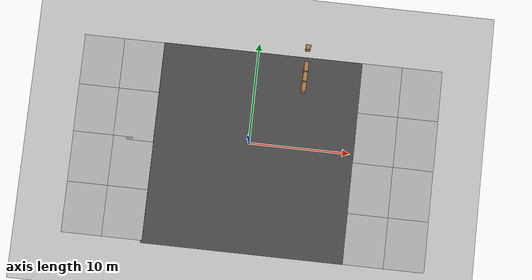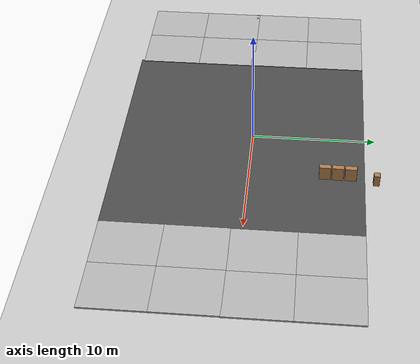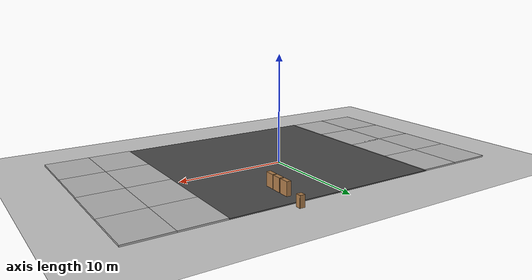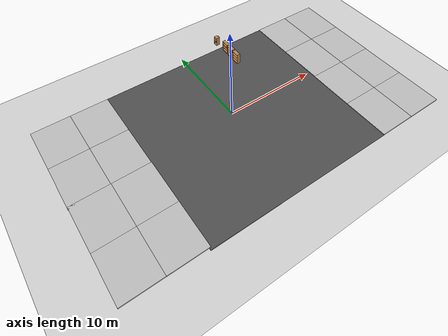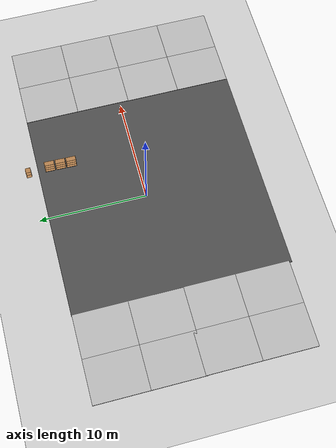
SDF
<sdf version="1.6">
 <world name="default">
  <model name="ground_plane">
   <static>1</static>
   <link name="link">
    <collision name="collision">
     <geometry><plane><normal>0 0 1</normal><size>100 100</size></plane></geometry>
     <surface><friction><ode><mu>100</mu><mu2>50</mu2></ode></friction></surface>
    </collision>
    <visual name="visual">
     <cast_shadows>0</cast_shadows>
     <geometry><plane><normal>0 0 1</normal><size>100 100</size></plane></geometry>
     <material>
      <script><uri>file://media/materials/scripts/gazebo.material</uri><name>Gazebo/Grey</name></script>
     </material>
    </visual>
   </link>
  </model>
  <model name="asphalt_plane">
   <static>1</static>
   <link name="link">
    <collision name="collision"><geometry><box><size>20 20 0.1</size></box></geometry></collision>
    <visual name="visual">
     <cast_shadows>0</cast_shadows>
     <geometry><box><size>20 20 0.1</size></box></geometry>
     <material>
      <script>
       <uri>model://asphalt_plane/materials/scripts</uri>
       <uri>model://asphalt_plane/materials/textures</uri>
       <name>vrc/asphalt</name>
      </script>
     </material>
    </visual>
   </link>
   <pose>0.430473 -0.863531 0 0 -0 0</pose>
  </model>
  <model name="mud_box">
   <static>1</static>
   <link name="link">
    <collision name="collision"><geometry><box><size>8 10 0.2</size></box></geometry></collision>
    <visual name="visual_1">
     <pose>-2 2.5 0 0 -0 0</pose>
     <cast_shadows>0</cast_shadows>
     <geometry><box><size>4 5 0.2</size></box></geometry>
     <material>
      <script>
       <uri>model://mud_box/materials/scripts</uri>
       <uri>model://mud_box/materials/textures</uri>
       <name>vrc/mud</name>
      </script>
     </material>
    </visual>
    <visual name="visual_2">
     <pose>2 2.5 0 0 -0 0</pose>
     <cast_shadows>0</cast_shadows>
     <geometry><box><size>4 5 0.2</size></box></geometry>
     <material>
      <script>
       <uri>model://mud_box/materials/scripts</uri>
       <uri>model://mud_box/materials/textures</uri>
       <name>vrc/mud</name>
      </script>
     </material>
    </visual>
    <visual name="visual_3">
     <pose>2 -2.5 0 0 -0 0</pose>
     <cast_shadows>0</cast_shadows>
     <geometry><box><size>4 5 0.2</size></box></geometry>
     <material>
      <script>
       <uri>model://mud_box/materials/scripts</uri>
       <uri>model://mud_box/materials/textures</uri>
       <name>vrc/mud</name>
      </script>
     </material>
    </visual>
    <visual name="visual_4">
     <pose>-2 -2.5 0 0 -0 0</pose>
     <cast_shadows>0</cast_shadows>
     <geometry><box><size>4 5 0.2</size></box></geometry>
     <material>
      <script>
       <uri>model://mud_box/materials/scripts</uri>
       <uri>model://mud_box/materials/textures</uri>
       <name>vrc/mud</name>
      </script>
     </material>
    </visual>
   </link>
   <pose>-13.4449 4.10121 0 0 -0 0</pose>
  </model>
  <model name="mud_box_0">
   <static>1</static>
   <link name="link">
    <collision name="collision"><geometry><box><size>8 10 0.2</size></box></geometry></collision>
    <visual name="visual_1">
     <pose>-2 2.5 0 0 -0 0</pose>
     <cast_shadows>0</cast_shadows>
     <geometry><box><size>4 5 0.2</size></box></geometry>
     <material>
      <script>
       <uri>model://mud_box/materials/scripts</uri>
       <uri>model://mud_box/materials/textures</uri>
       <name>vrc/mud</name>
      </script>
     </material>
    </visual>
    <visual name="visual_2">
     <pose>2 2.5 0 0 -0 0</pose>
     <cast_shadows>0</cast_shadows>
     <geometry><box><size>4 5 0.2</size></box></geometry>
     <material>
      <script>
       <uri>model://mud_box/materials/scripts</uri>
       <uri>model://mud_box/materials/textures</uri>
       <name>vrc/mud</name>
      </script>
     </material>
    </visual>
    <visual name="visual_3">
     <pose>2 -2.5 0 0 -0 0</pose>
     <cast_shadows>0</cast_shadows>
     <geometry><box><size>4 5 0.2</size></box></geometry>
     <material>
      <script>
       <uri>model://mud_box/materials/scripts</uri>
       <uri>model://mud_box/materials/textures</uri>
       <name>vrc/mud</name>
      </script>
     </material>
    </visual>
    <visual name="visual_4">
     <pose>-2 -2.5 0 0 -0 0</pose>
     <cast_shadows>0</cast_shadows>
     <geometry><box><size>4 5 0.2</size></box></geometry>
     <material>
      <script>
       <uri>model://mud_box/materials/scripts</uri>
       <uri>model://mud_box/materials/textures</uri>
       <name>vrc/mud</name>
      </script>
     </material>
    </visual>
   </link>
   <pose>-13.4171 -5.63031 0 0 -0 0</pose>
  </model>
  <model name="mud_box_1">
   <static>1</static>
   <link name="link">
    <collision name="collision"><geometry><box><size>8 10 0.2</size></box></geometry></collision>
    <visual name="visual_1">
     <pose>-2 2.5 0 0 -0 0</pose>
     <cast_shadows>0</cast_shadows>
     <geometry><box><size>4 5 0.2</size></box></geometry>
     <material>
      <script>
       <uri>model://mud_box/materials/scripts</uri>
       <uri>model://mud_box/materials/textures</uri>
       <name>vrc/mud</name>
      </script>
     </material>
    </visual>
    <visual name="visual_2">
     <pose>2 2.5 0 0 -0 0</pose>
     <cast_shadows>0</cast_shadows>
     <geometry><box><size>4 5 0.2</size></box></geometry>
     <material>
      <script>
       <uri>model://mud_box/materials/scripts</uri>
       <uri>model://mud_box/materials/textures</uri>
       <name>vrc/mud</name>
      </script>
     </material>
    </visual>
    <visual name="visual_3">
     <pose>2 -2.5 0 0 -0 0</pose>
     <cast_shadows>0</cast_shadows>
     <geometry><box><size>4 5 0.2</size></box></geometry>
     <material>
      <script>
       <uri>model://mud_box/materials/scripts</uri>
       <uri>model://mud_box/materials/textures</uri>
       <name>vrc/mud</name>
      </script>
     </material>
    </visual>
    <visual name="visual_4">
     <pose>-2 -2.5 0 0 -0 0</pose>
     <cast_shadows>0</cast_shadows>
     <geometry><box><size>4 5 0.2</size></box></geometry>
     <material>
      <script>
       <uri>model://mud_box/materials/scripts</uri>
       <uri>model://mud_box/materials/textures</uri>
       <name>vrc/mud</name>
      </script>
     </material>
    </visual>
   </link>
   <pose>14.3983 4.13625 0 0 -0 0</pose>
  </model>
  <model name="mud_box_2">
   <static>1</static>
   <link name="link">
    <collision name="collision"><geometry><box><size>8 10 0.2</size></box></geometry></collision>
    <visual name="visual_1">
     <pose>-2 2.5 0 0 -0 0</pose>
     <cast_shadows>0</cast_shadows>
     <geometry><box><size>4 5 0.2</size></box></geometry>
     <material>
      <script>
       <uri>model://mud_box/materials/scripts</uri>
       <uri>model://mud_box/materials/textures</uri>
       <name>vrc/mud</name>
      </script>
     </material>
    </visual>
    <visual name="visual_2">
     <pose>2 2.5 0 0 -0 0</pose>
     <cast_shadows>0</cast_shadows>
     <geometry><box><size>4 5 0.2</size></box></geometry>
     <material>
      <script>
       <uri>model://mud_box/materials/scripts</uri>
       <uri>model://mud_box/materials/textures</uri>
       <name>vrc/mud</name>
      </script>
     </material>
    </visual>
    <visual name="visual_3">
     <pose>2 -2.5 0 0 -0 0</pose>
     <cast_shadows>0</cast_shadows>
     <geometry><box><size>4 5 0.2</size></box></geometry>
     <material>
      <script>
       <uri>model://mud_box/materials/scripts</uri>
       <uri>model://mud_box/materials/textures</uri>
       <name>vrc/mud</name>
      </script>
     </material>
    </visual>
    <visual name="visual_4">
     <pose>-2 -2.5 0 0 -0 0</pose>
     <cast_shadows>0</cast_shadows>
     <geometry><box><size>4 5 0.2</size></box></geometry>
     <material>
      <script>
       <uri>model://mud_box/materials/scripts</uri>
       <uri>model://mud_box/materials/textures</uri>
       <name>vrc/mud</name>
      </script>
     </material>
    </visual>
   </link>
   <pose>14.3717 -5.83976 0 0 -0 0</pose>
  </model>
  <model name="cabinet">
   <static>1</static>
   <link name="cabinet_bottom_plate">
    <inertial>
     <pose>0 0 -1 0 -0 0</pose>
     <inertia><ixx>2.05</ixx><ixy>0</ixy><ixz>0</ixz><iyy>2.05</iyy><iyz>0</iyz><izz>2.05</izz></inertia>
     <mass>25</mass>
    </inertial>
    <collision name="cabinet_bottom_plate_geom">
     <pose>0 0 0.01 0 -0 0</pose>
     <geometry><box><size>0.45 0.45 0.02</size></box></geometry>
    </collision>
    <visual name="cabinet_bottom_plate_geom_visual">
     <pose>0 0 0.01 0 -0 0</pose>
     <geometry><box><size>0.45 0.45 0.02</size></box></geometry>
     <material>
      <script><uri>file://media/materials/scripts/gazebo.material</uri><name>Gazebo/Wood</name></script>
     </material>
    </visual>
    <collision name="cabinet_bottom_plate_geom_cabinet_back_plate">
     <pose>0.235 0 0.51 0 -0 0</pose>
     <geometry><box><size>0.02 0.45 1.02</size></box></geometry>
    </collision>
    <visual name="cabinet_bottom_plate_geom_cabinet_back_plate_visual">
     <pose>0.235 0 0.51 0 -0 0</pose>
     <geometry><box><size>0.02 0.45 1.02</size></box></geometry>
     <material>
      <script><uri>file://media/materials/scripts/gazebo.material</uri><name>Gazebo/Wood</name></script>
     </material>
    </visual>
    <collision name="cabinet_bottom_plate_geom_cabinet_left_plate">
     <pose>0 0.235 0.51 0 -0 0</pose>
     <geometry><box><size>0.45 0.02 1.02</size></box></geometry>
    </collision>
    <visual name="cabinet_bottom_plate_geom_cabinet_left_plate_visual">
     <pose>0 0.235 0.51 0 -0 0</pose>
     <geometry><box><size>0.45 0.02 1.02</size></box></geometry>
     <material>
      <script><uri>file://media/materials/scripts/gazebo.material</uri><name>Gazebo/Wood</name></script>
     </material>
    </visual>
    <collision name="cabinet_bottom_plate_geom_cabinet_middle_plate">
     <pose>0 0 0.51 0 -0 0</pose>
     <geometry><box><size>0.45 0.45 0.02</size></box></geometry>
    </collision>
    <visual name="cabinet_bottom_plate_geom_cabinet_middle_plate_visual">
     <pose>0 0 0.51 0 -0 0</pose>
     <geometry><box><size>0.45 0.45 0.02</size></box></geometry>
     <material>
      <script><uri>file://media/materials/scripts/gazebo.material</uri><name>Gazebo/Wood</name></script>
     </material>
    </visual>
    <collision name="cabinet_bottom_plate_geom_cabinet_right_plate">
     <pose>0 -0.235 0.51 0 -0 0</pose>
     <geometry><box><size>0.45 0.02 1.02</size></box></geometry>
    </collision>
    <visual name="cabinet_bottom_plate_geom_cabinet_right_plate_visual">
     <pose>0 -0.235 0.51 0 -0 0</pose>
     <geometry><box><size>0.45 0.02 1.02</size></box></geometry>
     <material>
      <script><uri>file://media/materials/scripts/gazebo.material</uri><name>Gazebo/Wood</name></script>
     </material>
    </visual>
    <collision name="cabinet_bottom_plate_geom_cabinet_top_plate">
     <pose>0 0 1.01 0 -0 0</pose>
     <geometry><box><size>0.45 0.45 0.02</size></box></geometry>
    </collision>
    <visual name="cabinet_bottom_plate_geom_cabinet_top_plate_visual">
     <pose>0 0 1.01 0 -0 0</pose>
     <geometry><box><size>0.45 0.45 0.02</size></box></geometry>
     <material>
      <script><uri>file://media/materials/scripts/gazebo.material</uri><name>Gazebo/Wood</name></script>
     </material>
    </visual>
   </link>
   <pose>4.82107 10.013 0 0 -0 0</pose>
  </model>
  <model name="bookshelf">
   <static>1</static>
   <link name="link">
    <inertial><mass>1</mass></inertial>
    <collision name="back">
     <pose>0 0.005 0.6 0 -0 0</pose>
     <geometry><box><size>0.9 0.01 1.2</size></box></geometry>
    </collision>
    <visual name="visual1">
     <pose>0 0.005 0.6 0 -0 0</pose>
     <geometry><box><size>0.9 0.01 1.2</size></box></geometry>
     <material>
      <script><uri>file://media/materials/scripts/gazebo.material</uri><name>Gazebo/Wood</name></script>
     </material>
    </visual>
    <collision name="left_side">
     <pose>0.45 -0.195 0.6 0 -0 0</pose>
     <geometry><box><size>0.02 0.4 1.2</size></box></geometry>
    </collision>
    <visual name="visual2">
     <pose>0.45 -0.195 0.6 0 -0 0</pose>
     <geometry><box><size>0.02 0.4 1.2</size></box></geometry>
     <material>
      <script><uri>file://media/materials/scripts/gazebo.material</uri><name>Gazebo/Wood</name></script>
     </material>
    </visual>
    <collision name="right_side">
     <pose>-0.45 -0.195 0.6 0 -0 0</pose>
     <geometry><box><size>0.02 0.4 1.2</size></box></geometry>
    </collision>
    <visual name="visual3">
     <pose>-0.45 -0.195 0.6 0 -0 0</pose>
     <geometry><box><size>0.02 0.4 1.2</size></box></geometry>
     <material>
      <script><uri>file://media/materials/scripts/gazebo.material</uri><name>Gazebo/Wood</name></script>
     </material>
    </visual>
    <collision name="bottom">
     <pose>0 -0.195 0.03 0 -0 0</pose>
     <geometry><box><size>0.88 0.4 0.06</size></box></geometry>
    </collision>
    <visual name="visual4">
     <pose>0 -0.195 0.03 0 -0 0</pose>
     <geometry><box><size>0.88 0.4 0.06</size></box></geometry>
     <material>
      <script><uri>file://media/materials/scripts/gazebo.material</uri><name>Gazebo/Wood</name></script>
     </material>
    </visual>
    <collision name="top">
     <pose>0 -0.195 1.19 0 -0 0</pose>
     <geometry><box><size>0.88 0.4 0.02</size></box></geometry>
    </collision>
    <visual name="visual5">
     <pose>0 -0.195 1.19 0 -0 0</pose>
     <geometry><box><size>0.88 0.4 0.02</size></box></geometry>
     <material>
      <script><uri>file://media/materials/scripts/gazebo.material</uri><name>Gazebo/Wood</name></script>
     </material>
    </visual>
    <collision name="low_shelf">
     <pose>0 -0.195 0.43 0 -0 0</pose>
     <geometry><box><size>0.88 0.4 0.02</size></box></geometry>
    </collision>
    <visual name="visual6">
     <pose>0 -0.195 0.43 0 -0 0</pose>
     <geometry><box><size>0.88 0.4 0.02</size></box></geometry>
     <material>
      <script><uri>file://media/materials/scripts/gazebo.material</uri><name>Gazebo/Wood</name></script>
     </material>
    </visual>
    <collision name="high_shelf">
     <pose>0 -0.195 0.8 0 -0 0</pose>
     <geometry><box><size>0.88 0.4 0.02</size></box></geometry>
    </collision>
    <visual name="visual7">
     <pose>0 -0.195 0.8 0 -0 0</pose>
     <geometry><box><size>0.88 0.4 0.02</size></box></geometry>
     <material>
      <script><uri>file://media/materials/scripts/gazebo.material</uri><name>Gazebo/Wood</name></script>
     </material>
    </visual>
   </link>
   <pose>4.97379 7.98054 0.340979 0 0 -1.5892</pose>
  </model>
  <model name="bookshelf_clone">
   <static>1</static>
   <link name="link">
    <inertial><mass>1</mass></inertial>
    <collision name="back">
     <pose>0 0.005 0.6 0 -0 0</pose>
     <geometry><box><size>0.9 0.01 1.2</size></box></geometry>
    </collision>
    <visual name="visual1">
     <pose>0 0.005 0.6 0 -0 0</pose>
     <geometry><box><size>0.9 0.01 1.2</size></box></geometry>
     <material>
      <script><uri>file://media/materials/scripts/gazebo.material</uri><name>Gazebo/Wood</name></script>
     </material>
    </visual>
    <collision name="left_side">
     <pose>0.45 -0.195 0.6 0 -0 0</pose>
     <geometry><box><size>0.02 0.4 1.2</size></box></geometry>
    </collision>
    <visual name="visual2">
     <pose>0.45 -0.195 0.6 0 -0 0</pose>
     <geometry><box><size>0.02 0.4 1.2</size></box></geometry>
     <material>
      <script><uri>file://media/materials/scripts/gazebo.material</uri><name>Gazebo/Wood</name></script>
     </material>
    </visual>
    <collision name="right_side">
     <pose>-0.45 -0.195 0.6 0 -0 0</pose>
     <geometry><box><size>0.02 0.4 1.2</size></box></geometry>
    </collision>
    <visual name="visual3">
     <pose>-0.45 -0.195 0.6 0 -0 0</pose>
     <geometry><box><size>0.02 0.4 1.2</size></box></geometry>
     <material>
      <script><uri>file://media/materials/scripts/gazebo.material</uri><name>Gazebo/Wood</name></script>
     </material>
    </visual>
    <collision name="bottom">
     <pose>0 -0.195 0.03 0 -0 0</pose>
     <geometry><box><size>0.88 0.4 0.06</size></box></geometry>
    </collision>
    <visual name="visual4">
     <pose>0 -0.195 0.03 0 -0 0</pose>
     <geometry><box><size>0.88 0.4 0.06</size></box></geometry>
     <material>
      <script><uri>file://media/materials/scripts/gazebo.material</uri><name>Gazebo/Wood</name></script>
     </material>
    </visual>
    <collision name="top">
     <pose>0 -0.195 1.19 0 -0 0</pose>
     <geometry><box><size>0.88 0.4 0.02</size></box></geometry>
    </collision>
    <visual name="visual5">
     <pose>0 -0.195 1.19 0 -0 0</pose>
     <geometry><box><size>0.88 0.4 0.02</size></box></geometry>
     <material>
      <script><uri>file://media/materials/scripts/gazebo.material</uri><name>Gazebo/Wood</name></script>
     </material>
    </visual>
    <collision name="low_shelf">
     <pose>0 -0.195 0.43 0 -0 0</pose>
     <geometry><box><size>0.88 0.4 0.02</size></box></geometry>
    </collision>
    <visual name="visual6">
     <pose>0 -0.195 0.43 0 -0 0</pose>
     <geometry><box><size>0.88 0.4 0.02</size></box></geometry>
     <material>
      <script><uri>file://media/materials/scripts/gazebo.material</uri><name>Gazebo/Wood</name></script>
     </material>
    </visual>
    <collision name="high_shelf">
     <pose>0 -0.195 0.8 0 -0 0</pose>
     <geometry><box><size>0.88 0.4 0.02</size></box></geometry>
    </collision>
    <visual name="visual7">
     <pose>0 -0.195 0.8 0 -0 0</pose>
     <geometry><box><size>0.88 0.4 0.02</size></box></geometry>
     <material>
      <script><uri>file://media/materials/scripts/gazebo.material</uri><name>Gazebo/Wood</name></script>
     </material>
    </visual>
   </link>
   <pose>4.95536 6.96664 0.340979 0 0 -1.5892</pose>
  </model>
  <model name="bookshelf_clone_0">
   <static>1</static>
   <link name="link">
    <inertial><mass>1</mass></inertial>
    <collision name="back">
     <pose>0 0.005 0.6 0 -0 0</pose>
     <geometry><box><size>0.9 0.01 1.2</size></box></geometry>
    </collision>
    <visual name="visual1">
     <pose>0 0.005 0.6 0 -0 0</pose>
     <geometry><box><size>0.9 0.01 1.2</size></box></geometry>
     <material>
      <script><uri>file://media/materials/scripts/gazebo.material</uri><name>Gazebo/Wood</name></script>
     </material>
    </visual>
    <collision name="left_side">
     <pose>0.45 -0.195 0.6 0 -0 0</pose>
     <geometry><box><size>0.02 0.4 1.2</size></box></geometry>
    </collision>
    <visual name="visual2">
     <pose>0.45 -0.195 0.6 0 -0 0</pose>
     <geometry><box><size>0.02 0.4 1.2</size></box></geometry>
     <material>
      <script><uri>file://media/materials/scripts/gazebo.material</uri><name>Gazebo/Wood</name></script>
     </material>
    </visual>
    <collision name="right_side">
     <pose>-0.45 -0.195 0.6 0 -0 0</pose>
     <geometry><box><size>0.02 0.4 1.2</size></box></geometry>
    </collision>
    <visual name="visual3">
     <pose>-0.45 -0.195 0.6 0 -0 0</pose>
     <geometry><box><size>0.02 0.4 1.2</size></box></geometry>
     <material>
      <script><uri>file://media/materials/scripts/gazebo.material</uri><name>Gazebo/Wood</name></script>
     </material>
    </visual>
    <collision name="bottom">
     <pose>0 -0.195 0.03 0 -0 0</pose>
     <geometry><box><size>0.88 0.4 0.06</size></box></geometry>
    </collision>
    <visual name="visual4">
     <pose>0 -0.195 0.03 0 -0 0</pose>
     <geometry><box><size>0.88 0.4 0.06</size></box></geometry>
     <material>
      <script><uri>file://media/materials/scripts/gazebo.material</uri><name>Gazebo/Wood</name></script>
     </material>
    </visual>
    <collision name="top">
     <pose>0 -0.195 1.19 0 -0 0</pose>
     <geometry><box><size>0.88 0.4 0.02</size></box></geometry>
    </collision>
    <visual name="visual5">
     <pose>0 -0.195 1.19 0 -0 0</pose>
     <geometry><box><size>0.88 0.4 0.02</size></box></geometry>
     <material>
      <script><uri>file://media/materials/scripts/gazebo.material</uri><name>Gazebo/Wood</name></script>
     </material>
    </visual>
    <collision name="low_shelf">
     <pose>0 -0.195 0.43 0 -0 0</pose>
     <geometry><box><size>0.88 0.4 0.02</size></box></geometry>
    </collision>
    <visual name="visual6">
     <pose>0 -0.195 0.43 0 -0 0</pose>
     <geometry><box><size>0.88 0.4 0.02</size></box></geometry>
     <material>
      <script><uri>file://media/materials/scripts/gazebo.material</uri><name>Gazebo/Wood</name></script>
     </material>
    </visual>
    <collision name="high_shelf">
     <pose>0 -0.195 0.8 0 -0 0</pose>
     <geometry><box><size>0.88 0.4 0.02</size></box></geometry>
    </collision>
    <visual name="visual7">
     <pose>0 -0.195 0.8 0 -0 0</pose>
     <geometry><box><size>0.88 0.4 0.02</size></box></geometry>
     <material>
      <script><uri>file://media/materials/scripts/gazebo.material</uri><name>Gazebo/Wood</name></script>
     </material>
    </visual>
   </link>
   <pose>4.92999 5.96138 0.340979 0 0 -1.5892</pose>
  </model>
 </world>
</sdf>
